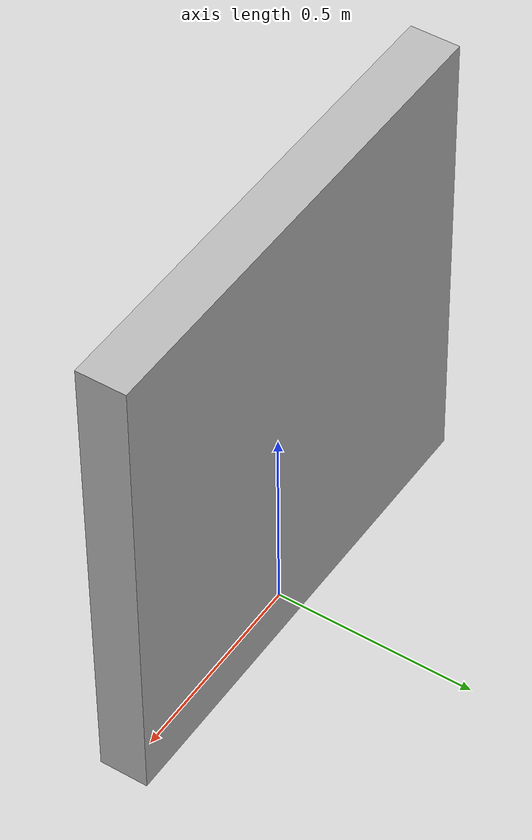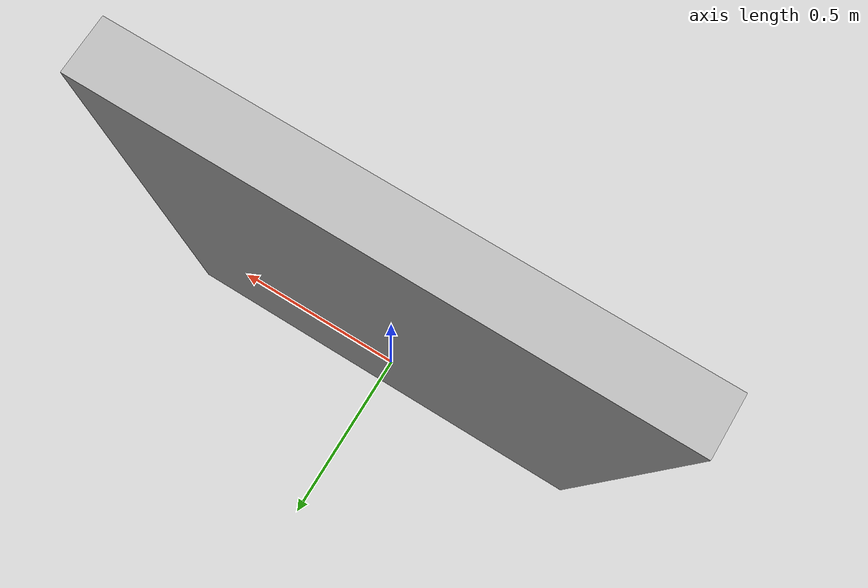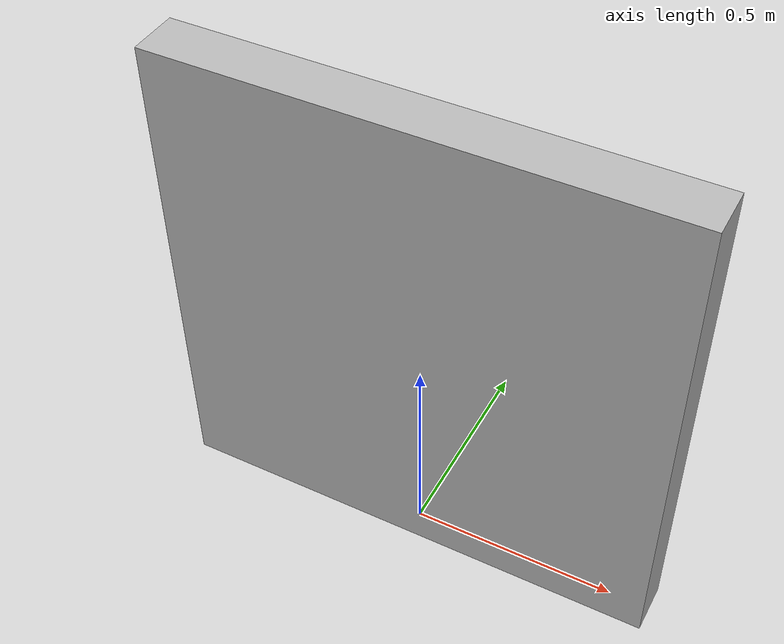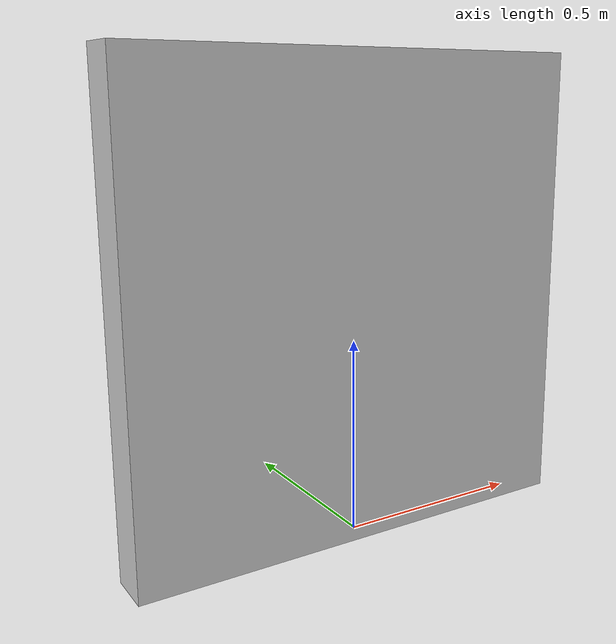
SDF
<?xml version="1.0" ?>
<sdf version="1.8">
  <model name="nist_maze_wall_120_box">
    <static>true</static>
    <pose>0 0 0.6 0 0 0</pose> <!-- 1.2 m tall, centered -->
    <link name="wall">
      <collision name="collision"><geometry><box><size>1.2 0.12 1.2</size></box></geometry></collision>
      <visual    name="visual"  ><geometry><box><size>1.2 0.12 1.2</size></box></geometry></visual>
    </link>
  </model>
</sdf>
